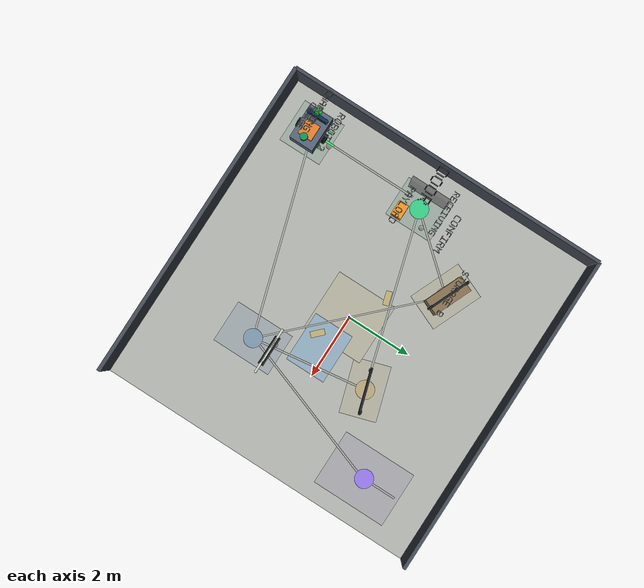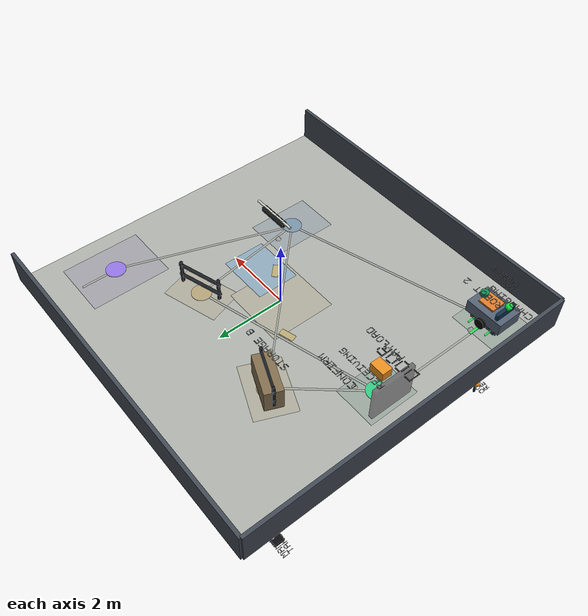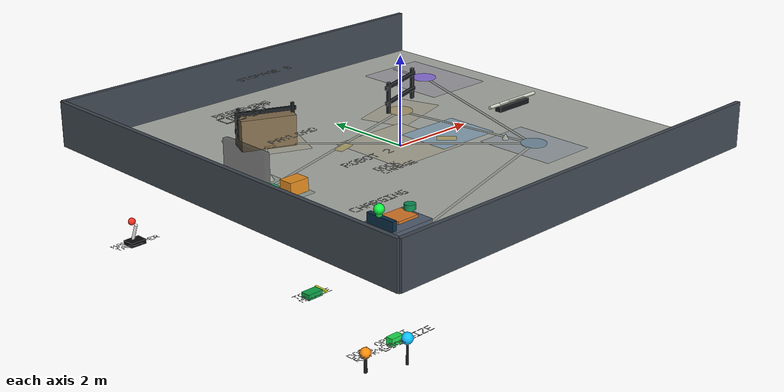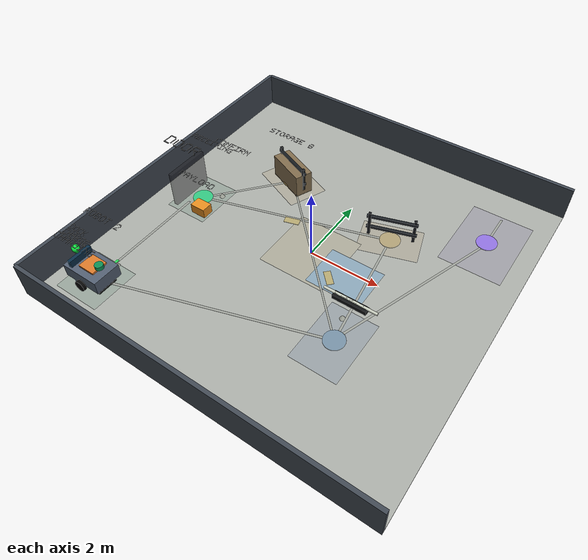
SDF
<sdf version="1.9">
 <world name="indoor_room">
  <model name="floor">
   <static>true</static>
   <link name="link">
    <collision name="collision"><geometry><box><size>10 10 0.05</size></box></geometry></collision>
    <visual name="visual">
     <geometry><box><size>10 10 0.05</size></box></geometry>
     <material>
      <ambient>0.66 0.67 0.65 1</ambient>
      <diffuse>0.66 0.67 0.65 1</diffuse>
      <specular>0.05 0.05 0.05 1</specular>
     </material>
    </visual>
   </link>
  </model>
  <model name="north_wall">
   <static>true</static>
   <pose>0 5 0.5 0 0 0</pose>
   <link name="link">
    <collision name="c"><geometry><box><size>10 0.1 1</size></box></geometry></collision>
    <visual name="v">
     <geometry><box><size>10 0.1 1</size></box></geometry>
     <material><diffuse>0.25 0.28 0.32 1</diffuse></material>
    </visual>
   </link>
  </model>
  <model name="south_wall">
   <static>true</static>
   <pose>0 -5 0.5 0 0 0</pose>
   <link name="link">
    <collision name="c"><geometry><box><size>10 0.1 1</size></box></geometry></collision>
    <visual name="v">
     <geometry><box><size>10 0.1 1</size></box></geometry>
     <material><diffuse>0.25 0.28 0.32 1</diffuse></material>
    </visual>
   </link>
  </model>
  <model name="west_wall">
   <static>true</static>
   <pose>-5 0 0.5 0 0 0</pose>
   <link name="link">
    <collision name="c"><geometry><box><size>0.1 10 1</size></box></geometry></collision>
    <visual name="v">
     <geometry><box><size>0.1 10 1</size></box></geometry>
     <material><diffuse>0.25 0.28 0.32 1</diffuse></material>
    </visual>
   </link>
  </model>
  <model name="storage_rack_2">
   <static>true</static>
   <pose>-2 2 0.35 0 0 -0.4</pose>
   <link name="link">
    <collision name="c"><geometry><box><size>1.2 0.5 0.7</size></box></geometry></collision>
    <visual name="v">
     <geometry><box><size>1.2 0.5 0.7</size></box></geometry>
     <material><diffuse>0.50 0.42 0.30 1</diffuse></material>
    </visual>
   </link>
  </model>
  <model name="showcase_rack_and_workcell_detail">
   <static>true</static>
   <link name="link">
    <visual name="rack_a_top_beam">
     <pose>1.50 1.50 0.78 0 0 0.30</pose>
     <geometry><box><size>1.34 0.06 0.08</size></box></geometry>
     <material><diffuse>0.10 0.12 0.14 1</diffuse></material>
    </visual>
    <visual name="rack_a_bottom_beam">
     <pose>1.50 1.50 0.42 0 0 0.30</pose>
     <geometry><box><size>1.34 0.06 0.08</size></box></geometry>
     <material><diffuse>0.10 0.12 0.14 1</diffuse></material>
    </visual>
    <visual name="rack_a_post_1">
     <pose>0.94 1.31 0.55 0 0 0.30</pose>
     <geometry><box><size>0.07 0.07 0.72</size></box></geometry>
     <material><diffuse>0.08 0.09 0.10 1</diffuse></material>
    </visual>
    <visual name="rack_a_post_2">
     <pose>2.06 1.69 0.55 0 0 0.30</pose>
     <geometry><box><size>0.07 0.07 0.72</size></box></geometry>
     <material><diffuse>0.08 0.09 0.10 1</diffuse></material>
    </visual>
    <visual name="rack_b_top_beam">
     <pose>-2.00 2.00 0.78 0 0 -0.40</pose>
     <geometry><box><size>1.34 0.06 0.08</size></box></geometry>
     <material><diffuse>0.10 0.12 0.14 1</diffuse></material>
    </visual>
    <visual name="rack_b_bottom_beam">
     <pose>-2.00 2.00 0.42 0 0 -0.40</pose>
     <geometry><box><size>1.34 0.06 0.08</size></box></geometry>
     <material><diffuse>0.10 0.12 0.14 1</diffuse></material>
    </visual>
    <visual name="rack_b_post_1">
     <pose>-2.54 2.24 0.55 0 0 -0.40</pose>
     <geometry><box><size>0.07 0.07 0.72</size></box></geometry>
     <material><diffuse>0.08 0.09 0.10 1</diffuse></material>
    </visual>
    <visual name="rack_b_post_2">
     <pose>-1.46 1.76 0.55 0 0 -0.40</pose>
     <geometry><box><size>0.07 0.07 0.72</size></box></geometry>
     <material><diffuse>0.08 0.09 0.10 1</diffuse></material>
    </visual>
    <visual name="packing_conveyor">
     <pose>2.00 -1.36 0.78 0 0 0</pose>
     <geometry><box><size>0.90 0.16 0.12</size></box></geometry>
     <material><diffuse>0.07 0.08 0.09 1</diffuse></material>
    </visual>
    <visual name="packing_roller_1">
     <pose>1.70 -1.36 0.87 0 1.5708 0</pose>
     <geometry><cylinder><radius>0.035</radius><length>0.82</length></cylinder></geometry>
     <material><diffuse>0.80 0.82 0.76 1</diffuse></material>
    </visual>
    <visual name="packing_roller_2">
     <pose>2.00 -1.36 0.87 0 1.5708 0</pose>
     <geometry><cylinder><radius>0.035</radius><length>0.82</length></cylinder></geometry>
     <material><diffuse>0.80 0.82 0.76 1</diffuse></material>
    </visual>
    <visual name="packing_roller_3">
     <pose>2.30 -1.36 0.87 0 1.5708 0</pose>
     <geometry><cylinder><radius>0.035</radius><length>0.82</length></cylinder></geometry>
     <material><diffuse>0.80 0.82 0.76 1</diffuse></material>
    </visual>
   </link>
  </model>
  <model name="showcase_zone_floor">
   <static>true</static>
   <pose>0 0 0.035 0 0 0</pose>
   <link name="link">
    <visual name="receiving_zone">
     <pose>-3.70 0.00 0 0 0 0</pose>
     <geometry><box><size>1.25 1.50 0.012</size></box></geometry>
     <material><diffuse>0.30 0.50 0.40 0.16</diffuse><ambient>0.30 0.50 0.40 0.16</ambient></material>
    </visual>
    <visual name="storage_a_zone">
     <pose>1.50 1.50 0 0 0 0.30</pose>
     <geometry><box><size>1.65 1.10 0.012</size></box></geometry>
     <material><diffuse>0.70 0.60 0.40 0.16</diffuse><ambient>0.70 0.60 0.40 0.16</ambient></material>
    </visual>
    <visual name="storage_b_zone">
     <pose>-2.00 2.00 0 0 0 -0.40</pose>
     <geometry><box><size>1.65 1.15 0.012</size></box></geometry>
     <material><diffuse>0.70 0.60 0.40 0.16</diffuse><ambient>0.70 0.60 0.40 0.16</ambient></material>
    </visual>
    <visual name="packing_zone">
     <pose>2.00 -2.00 0 0 0 0</pose>
     <geometry><box><size>1.30 1.85 0.012</size></box></geometry>
     <material><diffuse>0.34 0.46 0.62 0.16</diffuse><ambient>0.34 0.46 0.62 0.16</ambient></material>
    </visual>
    <visual name="dock_zone">
     <pose>-3.90 -3.80 0 0 0 0</pose>
     <geometry><box><size>1.35 1.35 0.012</size></box></geometry>
     <material><diffuse>0.32 0.52 0.42 0.16</diffuse><ambient>0.32 0.52 0.42 0.16</ambient></material>
    </visual>
    <visual name="elevator_zone">
     <pose>3.65 2.85 0 0 0 0</pose>
     <geometry><box><size>1.70 2.30 0.012</size></box></geometry>
     <material><diffuse>0.46 0.42 0.62 0.15</diffuse><ambient>0.46 0.42 0.62 0.15</ambient></material>
    </visual>
    <visual name="traffic_control_zone">
     <pose>0.00 0.00 0.006 0 0 0</pose>
     <geometry><box><size>1.90 1.90 0.012</size></box></geometry>
     <material><diffuse>0.72 0.64 0.40 0.14</diffuse><ambient>0.72 0.64 0.40 0.14</ambient></material>
    </visual>
    <visual name="slow_zone_overlay">
     <pose>1.20 -0.25 0.012 0 0 0</pose>
     <geometry><box><size>1.55 1.25 0.012</size></box></geometry>
     <material><diffuse>0.08 0.56 1.0 0.20</diffuse><ambient>0.08 0.56 1.0 0.20</ambient></material>
    </visual>
   </link>
  </model>
  <model name="showcase_lane_markers">
   <static>true</static>
   <pose>0 0 0.055 0 0 0</pose>
   <link name="link">
    <visual name="lane_dock_receiving">
     <pose>-3.90 -1.90 0 0 0 1.5708</pose>
     <geometry><box><size>3.10 0.055 0.018</size></box></geometry>
     <material><diffuse>0.60 0.62 0.58 0.40</diffuse><emissive>0.06 0.06 0.05 1</emissive></material>
    </visual>
    <visual name="lane_receiving_storage_a">
     <pose>-1.10 0.75 0 0 0 0.2808</pose>
     <geometry><box><size>5.40 0.055 0.018</size></box></geometry>
     <material><diffuse>0.60 0.62 0.58 0.40</diffuse><emissive>0.06 0.06 0.05 1</emissive></material>
    </visual>
    <visual name="lane_receiving_storage_b">
     <pose>-2.85 1.00 0 0 0 0.8663</pose>
     <geometry><box><size>2.65 0.055 0.018</size></box></geometry>
     <material><diffuse>0.60 0.62 0.58 0.40</diffuse><emissive>0.06 0.06 0.05 1</emissive></material>
    </visual>
    <visual name="lane_storage_a_packing">
     <pose>1.75 -0.25 0 0 0 -1.4289</pose>
     <geometry><box><size>3.55 0.055 0.018</size></box></geometry>
     <material><diffuse>0.60 0.62 0.58 0.40</diffuse><emissive>0.06 0.06 0.05 1</emissive></material>
    </visual>
    <visual name="lane_storage_b_packing">
     <pose>0.00 0.00 0.004 0 0 -0.7854</pose>
     <geometry><box><size>5.65 0.045 0.018</size></box></geometry>
     <material><diffuse>0.60 0.62 0.58 0.34</diffuse><emissive>0.05 0.05 0.04 1</emissive></material>
    </visual>
    <visual name="lane_packing_dock">
     <pose>-0.95 -2.90 0 0 0 -2.8450</pose>
     <geometry><box><size>6.20 0.055 0.018</size></box></geometry>
     <material><diffuse>0.60 0.62 0.58 0.40</diffuse><emissive>0.06 0.06 0.05 1</emissive></material>
    </visual>
    <visual name="lane_packing_lift">
     <pose>2.83 0.43 0 0 0 1.2315</pose>
     <geometry><box><size>4.95 0.055 0.018</size></box></geometry>
     <material><diffuse>0.60 0.62 0.58 0.40</diffuse><emissive>0.06 0.06 0.05 1</emissive></material>
    </visual>
    <visual name="lane_lift_floor2">
     <pose>3.65 3.35 0 0 0 1.5708</pose>
     <geometry><box><size>1.05 0.055 0.018</size></box></geometry>
     <material><diffuse>0.60 0.62 0.58 0.40</diffuse><emissive>0.06 0.06 0.05 1</emissive></material>
    </visual>
    <visual name="arrow_receiving">
     <pose>-3.28 0.34 0.020 0 0 0.78</pose>
     <geometry><cone><radius>0.11</radius><length>0.18</length></cone></geometry>
     <material><diffuse>0.64 0.66 0.60 0.55</diffuse><emissive>0.08 0.08 0.06 1</emissive></material>
    </visual>
    <visual name="arrow_packing">
     <pose>1.82 -1.36 0.020 0 0 -1.2</pose>
     <geometry><cone><radius>0.11</radius><length>0.18</length></cone></geometry>
     <material><diffuse>0.64 0.66 0.60 0.55</diffuse><emissive>0.08 0.08 0.06 1</emissive></material>
    </visual>
    <visual name="arrow_dock">
     <pose>-3.82 -3.18 0.020 0 0 -1.57</pose>
     <geometry><cone><radius>0.11</radius><length>0.18</length></cone></geometry>
     <material><diffuse>0.64 0.66 0.60 0.55</diffuse><emissive>0.08 0.08 0.06 1</emissive></material>
    </visual>
   </link>
  </model>
  <model name="showcase_station_pads">
   <static>true</static>
   <pose>0 0 0.070 0 0 0</pose>
   <link name="link">
    <visual name="pad_receiving">
     <pose>-3.70 0.00 0 0 0 0</pose>
     <geometry><cylinder><radius>0.28</radius><length>0.026</length></cylinder></geometry>
     <material><diffuse>0.04 0.86 0.48 0.70</diffuse><emissive>0.00 0.22 0.09 1</emissive></material>
    </visual>
    <visual name="pad_storage_a">
     <pose>1.50 1.50 0 0 0 0</pose>
     <geometry><cylinder><radius>0.28</radius><length>0.026</length></cylinder></geometry>
     <material><diffuse>0.74 0.62 0.34 0.55</diffuse><emissive>0.24 0.12 0.00 1</emissive></material>
    </visual>
    <visual name="pad_storage_b">
     <pose>-2.00 2.00 0 0 0 0</pose>
     <geometry><cylinder><radius>0.28</radius><length>0.026</length></cylinder></geometry>
     <material><diffuse>0.74 0.62 0.34 0.55</diffuse><emissive>0.24 0.12 0.00 1</emissive></material>
    </visual>
    <visual name="pad_packing">
     <pose>2.00 -2.00 0 0 0 0</pose>
     <geometry><cylinder><radius>0.28</radius><length>0.026</length></cylinder></geometry>
     <material><diffuse>0.34 0.52 0.68 0.55</diffuse><emissive>0.00 0.14 0.30 1</emissive></material>
    </visual>
    <visual name="pad_dock">
     <pose>-3.90 -3.80 0 0 0 0</pose>
     <geometry><cylinder><radius>0.28</radius><length>0.026</length></cylinder></geometry>
     <material><diffuse>0.06 0.90 0.34 0.72</diffuse><emissive>0.00 0.26 0.08 1</emissive></material>
    </visual>
    <visual name="pad_lift">
     <pose>3.65 2.85 0 0 0 0</pose>
     <geometry><cylinder><radius>0.28</radius><length>0.026</length></cylinder></geometry>
     <material><diffuse>0.56 0.40 1.00 0.72</diffuse><emissive>0.10 0.04 0.28 1</emissive></material>
    </visual>
    <visual name="wait_point_1">
     <pose>-1.05 0.62 0.012 0 0 0.28</pose>
     <geometry><box><size>0.42 0.18 0.026</size></box></geometry>
     <material><diffuse>0.78 0.68 0.34 0.60</diffuse><emissive>0.28 0.20 0.00 1</emissive></material>
    </visual>
    <visual name="wait_point_2">
     <pose>0.88 -0.52 0.012 0 0 -0.78</pose>
     <geometry><box><size>0.42 0.18 0.026</size></box></geometry>
     <material><diffuse>0.78 0.68 0.34 0.60</diffuse><emissive>0.28 0.20 0.00 1</emissive></material>
    </visual>
   </link>
  </model>
  <model name="showcase_dock_guidance">
   <static>true</static>
   <pose>-3.90 -3.48 0.075 0 0 0</pose>
   <link name="link">
    <visual name="approach_lane">
     <pose>0 0 0 0 0 1.5708</pose>
     <geometry><box><size>0.86 0.06 0.024</size></box></geometry>
     <material><diffuse>0.12 0.95 0.34 0.86</diffuse><emissive>0.02 0.28 0.08 1</emissive></material>
    </visual>
    <visual name="left_alignment">
     <pose>-0.28 -0.10 0.006 0 0 1.5708</pose>
     <geometry><box><size>0.58 0.04 0.024</size></box></geometry>
     <material><diffuse>0.12 0.95 0.34 0.86</diffuse><emissive>0.02 0.28 0.08 1</emissive></material>
    </visual>
    <visual name="right_alignment">
     <pose>0.28 -0.10 0.006 0 0 1.5708</pose>
     <geometry><box><size>0.58 0.04 0.024</size></box></geometry>
     <material><diffuse>0.12 0.95 0.34 0.86</diffuse><emissive>0.02 0.28 0.08 1</emissive></material>
    </visual>
   </link>
  </model>
  <model name="receiving_door">
   <static>true</static>
   <pose>-4.15 0 0 0 0 0</pose>
   <link name="link">
    <visual name="frame_visual">
     <pose>0 0 0.55 0 0 0</pose>
     <geometry><box><size>0.12 1.25 1.1</size></box></geometry>
     <material><diffuse>0.12 0.12 0.14 0.45</diffuse></material>
    </visual>
   </link>
  </model>
  <model name="receiving_door_panel">
   <static>false</static>
   <pose>-4.15 0 0.55 0 0 0</pose>
   <link name="link">
    <gravity>false</gravity>
    <visual name="panel_visual">
     <geometry><box><size>0.10 1.00 1.00</size></box></geometry>
     <material><diffuse>0.88 0.16 0.12 0.85</diffuse></material>
    </visual>
   </link>
  </model>
  <model name="localization_status_beacon">
   <static>false</static>
   <pose>-3.35 -3.55 -2 0 0 0</pose>
   <link name="link">
    <gravity>false</gravity>
    <visual name="mast_visual">
     <pose>0 0 -0.28 0 0 0</pose>
     <geometry><cylinder><radius>0.025</radius><length>0.55</length></cylinder></geometry>
     <material><diffuse>0.08 0.08 0.09 1</diffuse></material>
    </visual>
    <visual name="beacon_visual">
     <geometry><sphere><radius>0.12</radius></sphere></geometry>
     <material><diffuse>0.05 0.75 1.0 0.95</diffuse><emissive>0.02 0.34 0.70 1</emissive></material>
    </visual>
   </link>
  </model>
  <model name="manual_takeover_indicator">
   <static>false</static>
   <pose>-4.35 3.65 -2 0 0 0</pose>
   <link name="link">
    <gravity>false</gravity>
    <visual name="joystick_base_visual">
     <geometry><box><size>0.38 0.28 0.10</size></box></geometry>
     <material><diffuse>0.05 0.05 0.06 1</diffuse></material>
    </visual>
    <visual name="joystick_stick_visual">
     <pose>0 0 0.22 0.38 0 0</pose>
     <geometry><cylinder><radius>0.035</radius><length>0.42</length></cylinder></geometry>
     <material><diffuse>0.95 0.95 0.95 1</diffuse></material>
    </visual>
    <visual name="joystick_top_visual">
     <pose>0 0.07 0.45 0 0 0</pose>
     <geometry><sphere><radius>0.08</radius></sphere></geometry>
     <material><diffuse>0.95 0.18 0.12 1</diffuse><emissive>0.35 0.02 0.01 1</emissive></material>
    </visual>
   </link>
  </model>
  <model name="top_module_status_indicator">
   <static>false</static>
   <pose>-3.35 -0.90 -2 0 0 0</pose>
   <link name="link">
    <gravity>false</gravity>
    <visual name="module_visual">
     <geometry><box><size>0.36 0.22 0.12</size></box></geometry>
     <material><diffuse>0.05 0.65 0.28 0.95</diffuse><emissive>0.01 0.28 0.08 1</emissive></material>
    </visual>
    <visual name="scan_bar_visual">
     <pose>0.24 0 0.02 0 0 0</pose>
     <geometry><box><size>0.05 0.34 0.04</size></box></geometry>
     <material><diffuse>0.95 0.95 0.20 1</diffuse><emissive>0.45 0.45 0.03 1</emissive></material>
    </visual>
   </link>
  </model>
  <model name="payload_box_waiting">
   <static>false</static>
   <pose>-3.35 -0.45 0.18 0 0 0</pose>
   <link name="link">
    <gravity>false</gravity>
    <visual name="visual">
     <geometry><box><size>0.45 0.32 0.28</size></box></geometry>
     <material><diffuse>0.9 0.55 0.12 1</diffuse></material>
    </visual>
   </link>
  </model>
  <model name="charging_dock">
   <static>true</static>
   <pose>-3.9 -3.8 0 0 0 0</pose>
   <link name="base">
    <collision name="base_collision">
     <pose>0 0 0.04 0 0 0</pose>
     <geometry><box><size>0.85 0.55 0.08</size></box></geometry>
    </collision>
    <visual name="base_visual">
     <pose>0 0 0.04 0 0 0</pose>
     <geometry><box><size>0.85 0.55 0.08</size></box></geometry>
     <material><diffuse>0.08 0.08 0.09 1</diffuse></material>
    </visual>
    <visual name="back_panel">
     <pose>-0.34 0 0.42 0 0 0</pose>
     <geometry><box><size>0.10 0.65 0.75</size></box></geometry>
     <material><diffuse>0.04 0.18 0.28 1</diffuse></material>
    </visual>
    <visual name="charge_contact_left">
     <pose>0.10 0.14 0.13 0 0 0</pose>
     <geometry><box><size>0.16 0.04 0.08</size></box></geometry>
     <material><diffuse>0.95 0.68 0.12 1</diffuse></material>
    </visual>
    <visual name="charge_contact_right">
     <pose>0.10 -0.14 0.13 0 0 0</pose>
     <geometry><box><size>0.16 0.04 0.08</size></box></geometry>
     <material><diffuse>0.95 0.68 0.12 1</diffuse></material>
    </visual>
    <visual name="status_light">
     <pose>-0.40 0 0.85 0 0 0</pose>
     <geometry><sphere><radius>0.06</radius></sphere></geometry>
     <material><diffuse>0.05 0.8 0.25 1</diffuse><emissive>0.02 0.5 0.08 1</emissive></material>
    </visual>
   </link>
  </model>
  <model name="charging_status_beacon">
   <static>false</static>
   <pose>-4.30 -3.80 0.95 0 0 0</pose>
   <link name="link">
    <gravity>false</gravity>
    <visual name="beacon_visual">
     <geometry><sphere><radius>0.10</radius></sphere></geometry>
     <material><diffuse>0.05 0.95 0.25 0.95</diffuse><emissive>0.02 0.75 0.12 1</emissive></material>
    </visual>
   </link>
  </model>
  <model name="docking_retry_warning_beacon">
   <static>false</static>
   <pose>-4.30 -3.42 -2 0 0 0</pose>
   <link name="link">
    <gravity>false</gravity>
    <visual name="beacon_visual">
     <geometry><sphere><radius>0.11</radius></sphere></geometry>
     <material><diffuse>1.0 0.55 0.04 0.95</diffuse><emissive>0.70 0.24 0.02 1</emissive></material>
    </visual>
    <visual name="base_visual">
     <pose>0 0 -0.20 0 0 0</pose>
     <geometry><cylinder><radius>0.035</radius><length>0.40</length></cylinder></geometry>
     <material><diffuse>0.08 0.08 0.09 1</diffuse></material>
    </visual>
   </link>
  </model>
  <model name="opportunity_charge_beacon">
   <static>false</static>
   <pose>-3.55 -3.42 -2 0 0 0</pose>
   <link name="link">
    <gravity>false</gravity>
    <visual name="battery_visual">
     <geometry><box><size>0.28 0.16 0.16</size></box></geometry>
     <material><diffuse>0.12 0.88 0.32 0.95</diffuse><emissive>0.02 0.42 0.10 1</emissive></material>
    </visual>
    <visual name="battery_tip_visual">
     <pose>0.17 0 0 0 0 0</pose>
     <geometry><box><size>0.05 0.08 0.09</size></box></geometry>
     <material><diffuse>0.12 0.88 0.32 0.95</diffuse><emissive>0.02 0.42 0.10 1</emissive></material>
    </visual>
   </link>
  </model>
  <model name="label_robot_2">
   <static>false</static>
   <pose>-3.90 -3.10 1.60 0 0 0.00</pose>
   <link name="link">
    <gravity>false</gravity>
    <visual name="text_mesh_visual">
     <cast_shadows>false</cast_shadows>
     <geometry><mesh><uri>../media/text_meshes/label_robot_2.obj</uri></mesh></geometry>
     <material>
      <ambient>0.000 0.000 0.000 1</ambient>
      <diffuse>0.000 0.000 0.000 1</diffuse>
      <emissive>0 0 0 1</emissive>
      <double_sided>true</double_sided>
     </material>
    </visual>
   </link>
  </model>
  <model name="label_dock">
   <static>false</static>
   <pose>-3.90 -3.80 1.65 0 0 0.00</pose>
   <link name="link">
    <gravity>false</gravity>
    <visual name="text_mesh_visual">
     <cast_shadows>false</cast_shadows>
     <geometry><mesh><uri>../media/text_meshes/label_dock.obj</uri></mesh></geometry>
     <material>
      <ambient>0.000 0.000 0.000 1</ambient>
      <diffuse>0.000 0.000 0.000 1</diffuse>
      <emissive>0 0 0 1</emissive>
      <double_sided>true</double_sided>
     </material>
    </visual>
   </link>
  </model>
  <model name="label_receiving">
   <static>false</static>
   <pose>-3.70 0.65 1.55 0 0 0.00</pose>
   <link name="link">
    <gravity>false</gravity>
    <visual name="text_mesh_visual">
     <cast_shadows>false</cast_shadows>
     <geometry><mesh><uri>../media/text_meshes/label_receiving.obj</uri></mesh></geometry>
     <material>
      <ambient>0.000 0.000 0.000 1</ambient>
      <diffuse>0.000 0.000 0.000 1</diffuse>
      <emissive>0 0 0 1</emissive>
      <double_sided>true</double_sided>
     </material>
    </visual>
   </link>
  </model>
  <model name="label_door">
   <static>false</static>
   <pose>-4.15 0.00 1.70 0 0 0.00</pose>
   <link name="link">
    <gravity>false</gravity>
    <visual name="text_mesh_visual">
     <cast_shadows>false</cast_shadows>
     <geometry><mesh><uri>../media/text_meshes/label_door.obj</uri></mesh></geometry>
     <material>
      <ambient>0.000 0.000 0.000 1</ambient>
      <diffuse>0.000 0.000 0.000 1</diffuse>
      <emissive>0 0 0 1</emissive>
      <double_sided>true</double_sided>
     </material>
    </visual>
   </link>
  </model>
  <model name="label_storage_b">
   <static>false</static>
   <pose>-2.00 2.00 1.60 0 0 0.00</pose>
   <link name="link">
    <gravity>false</gravity>
    <visual name="text_mesh_visual">
     <cast_shadows>false</cast_shadows>
     <geometry><mesh><uri>../media/text_meshes/label_storage_b.obj</uri></mesh></geometry>
     <material>
      <ambient>0.000 0.000 0.000 1</ambient>
      <diffuse>0.000 0.000 0.000 1</diffuse>
      <emissive>0 0 0 1</emissive>
      <double_sided>true</double_sided>
     </material>
    </visual>
   </link>
  </model>
  <model name="label_confirm">
   <static>false</static>
   <pose>-3.32 1.03 1.35 0 0 0.00</pose>
   <link name="link">
    <gravity>false</gravity>
    <visual name="text_mesh_visual">
     <cast_shadows>false</cast_shadows>
     <geometry><mesh><uri>../media/text_meshes/label_confirm.obj</uri></mesh></geometry>
     <material>
      <ambient>0.000 0.000 0.000 1</ambient>
      <diffuse>0.000 0.000 0.000 1</diffuse>
      <emissive>0 0 0 1</emissive>
      <double_sided>true</double_sided>
     </material>
    </visual>
   </link>
  </model>
  <model name="label_payload">
   <static>false</static>
   <pose>-3.35 -0.45 1.20 0 0 0.00</pose>
   <link name="link">
    <gravity>false</gravity>
    <visual name="text_mesh_visual">
     <cast_shadows>false</cast_shadows>
     <geometry><mesh><uri>../media/text_meshes/label_payload.obj</uri></mesh></geometry>
     <material>
      <ambient>0.000 0.000 0.000 1</ambient>
      <diffuse>0.000 0.000 0.000 1</diffuse>
      <emissive>0 0 0 1</emissive>
      <double_sided>true</double_sided>
     </material>
    </visual>
   </link>
  </model>
  <model name="label_charging_status">
   <static>false</static>
   <pose>-4.30 -3.80 1.10 0 0 0.00</pose>
   <link name="link">
    <gravity>false</gravity>
    <visual name="text_mesh_visual">
     <cast_shadows>false</cast_shadows>
     <geometry><mesh><uri>../media/text_meshes/label_charging_status.obj</uri></mesh></geometry>
     <material>
      <ambient>0.000 0.000 0.000 1</ambient>
      <diffuse>0.000 0.000 0.000 1</diffuse>
      <emissive>0 0 0 1</emissive>
      <double_sided>true</double_sided>
     </material>
    </visual>
   </link>
  </model>
  <model name="label_docking_retry_status">
   <static>false</static>
   <pose>-4.30 -3.42 -2 0 0 0.00</pose>
   <link name="link">
    <gravity>false</gravity>
    <visual name="text_mesh_visual">
     <cast_shadows>false</cast_shadows>
     <geometry><mesh><uri>../media/text_meshes/label_docking_retry_status.obj</uri></mesh></geometry>
     <material>
      <ambient>0.000 0.000 0.000 1</ambient>
      <diffuse>0.000 0.000 0.000 1</diffuse>
      <emissive>0 0 0 1</emissive>
      <double_sided>true</double_sided>
     </material>
    </visual>
   </link>
  </model>
  <model name="label_opportunity_charge_status">
   <static>false</static>
   <pose>-3.55 -3.42 -2 0 0 0.00</pose>
   <link name="link">
    <gravity>false</gravity>
    <visual name="text_mesh_visual">
     <cast_shadows>false</cast_shadows>
     <geometry><mesh><uri>../media/text_meshes/label_opportunity_charge_status.obj</uri></mesh></geometry>
     <material>
      <ambient>0.000 0.000 0.000 1</ambient>
      <diffuse>0.000 0.000 0.000 1</diffuse>
      <emissive>0 0 0 1</emissive>
      <double_sided>true</double_sided>
     </material>
    </visual>
   </link>
  </model>
  <model name="label_top_module_status">
   <static>false</static>
   <pose>-3.35 -0.90 -2 0 0 0.00</pose>
   <link name="link">
    <gravity>false</gravity>
    <visual name="text_mesh_visual">
     <cast_shadows>false</cast_shadows>
     <geometry><mesh><uri>../media/text_meshes/label_top_module_status.obj</uri></mesh></geometry>
     <material>
      <ambient>0.000 0.000 0.000 1</ambient>
      <diffuse>0.000 0.000 0.000 1</diffuse>
      <emissive>0 0 0 1</emissive>
      <double_sided>true</double_sided>
     </material>
    </visual>
   </link>
  </model>
  <model name="label_localization_status">
   <static>false</static>
   <pose>-3.35 -3.55 -2 0 0 0.00</pose>
   <link name="link">
    <gravity>false</gravity>
    <visual name="text_mesh_visual">
     <cast_shadows>false</cast_shadows>
     <geometry><mesh><uri>../media/text_meshes/label_localization_status.obj</uri></mesh></geometry>
     <material>
      <ambient>0.000 0.000 0.000 1</ambient>
      <diffuse>0.000 0.000 0.000 1</diffuse>
      <emissive>0 0 0 1</emissive>
      <double_sided>true</double_sided>
     </material>
    </visual>
   </link>
  </model>
  <model name="label_manual_takeover_status">
   <static>false</static>
   <pose>-4.35 3.65 -2 0 0 0.00</pose>
   <link name="link">
    <gravity>false</gravity>
    <visual name="text_mesh_visual">
     <cast_shadows>false</cast_shadows>
     <geometry><mesh><uri>../media/text_meshes/label_manual_takeover_status.obj</uri></mesh></geometry>
     <material>
      <ambient>0.000 0.000 0.000 1</ambient>
      <diffuse>0.000 0.000 0.000 1</diffuse>
      <emissive>0 0 0 1</emissive>
      <double_sided>true</double_sided>
     </material>
    </visual>
   </link>
  </model>
  <model name="mobile_robot_2">
   <static>false</static>
   <pose>-3.9 -3.8 0.24 0 0 0</pose>
   <link name="base_link">
    <inertial><mass>24.0</mass><inertia><ixx>0.18</ixx><iyy>0.28</iyy><izz>0.36</izz></inertia></inertial>
    <collision name="base_collision">
     <pose>0 0 0.18 0 0 0</pose>
     <geometry><box><size>1.10 0.76 0.36</size></box></geometry>
    </collision>
    <visual name="base_visual">
     <pose>0 0 0.18 0 0 0</pose>
     <geometry><box><size>1.10 0.76 0.36</size></box></geometry>
     <material><diffuse>0.32 0.37 0.44 1</diffuse></material>
    </visual>
    <visual name="fleet_label_visual">
     <pose>0.10 0 0.43 0 0 0</pose>
     <geometry><box><size>0.48 0.44 0.05</size></box></geometry>
     <material><diffuse>0.85 0.47 0.16 1</diffuse></material>
    </visual>
    <visual name="lidar_visual">
     <pose>0.36 0 0.54 0 0 0</pose>
     <geometry><cylinder><radius>0.11</radius><length>0.11</length></cylinder></geometry>
     <material><diffuse>0.05 0.55 0.32 1</diffuse></material>
    </visual>
    <sensor name="lidar" type="gpu_lidar">
     <pose>0.36 0 0.54 0 0 0</pose>
     <topic>/robot_2/sim/scan</topic>
     <update_rate>10</update_rate>
     <always_on>true</always_on>
     <lidar>
      <scan>
       <horizontal>
        <samples>360</samples>
        <resolution>1</resolution>
        <min_angle>-3.14159265359</min_angle>
        <max_angle>3.14159265359</max_angle>
       </horizontal>
      </scan>
      <range><min>0.08</min><max>12.0</max><resolution>0.01</resolution></range>
     </lidar>
    </sensor>
   </link>
   <link name="left_wheel">
    <pose>0 0.43 0 1.57079632679 0 0</pose>
    <inertial><mass>0.7</mass><inertia><ixx>0.002</ixx><iyy>0.002</iyy><izz>0.002</izz></inertia></inertial>
    <collision name="collision">
     <geometry><cylinder><radius>0.15</radius><length>0.09</length></cylinder></geometry>
    </collision>
    <visual name="visual">
     <geometry><cylinder><radius>0.15</radius><length>0.09</length></cylinder></geometry>
     <material><diffuse>0.02 0.02 0.02 1</diffuse></material>
    </visual>
   </link>
   <link name="right_wheel">
    <pose>0 -0.43 0 1.57079632679 0 0</pose>
    <inertial><mass>0.7</mass><inertia><ixx>0.002</ixx><iyy>0.002</iyy><izz>0.002</izz></inertia></inertial>
    <collision name="collision">
     <geometry><cylinder><radius>0.15</radius><length>0.09</length></cylinder></geometry>
    </collision>
    <visual name="visual">
     <geometry><cylinder><radius>0.15</radius><length>0.09</length></cylinder></geometry>
     <material><diffuse>0.02 0.02 0.02 1</diffuse></material>
    </visual>
   </link>
   <link name="caster_wheel">
    <pose>-0.4 0 -0.08 0 0 0</pose>
    <collision name="collision"><geometry><sphere><radius>0.08</radius></sphere></geometry></collision>
    <visual name="visual">
     <geometry><sphere><radius>0.08</radius></sphere></geometry>
     <material><diffuse>0.02 0.02 0.02 1</diffuse></material>
    </visual>
   </link>
   <joint name="left_wheel_joint" type="revolute">
    <parent>base_link</parent>
    <child>left_wheel</child>
    <axis><xyz>0 1 0</xyz></axis>
   </joint>
   <joint name="right_wheel_joint" type="revolute">
    <parent>base_link</parent>
    <child>right_wheel</child>
    <axis><xyz>0 1 0</xyz></axis>
   </joint>
   <joint name="caster_joint" type="fixed"><parent>base_link</parent><child>caster_wheel</child></joint>
   <plugin filename="gz-sim-diff-drive-system" name="gz::sim::systems::DiffDrive">
    <left_joint>left_wheel_joint</left_joint>
    <right_joint>right_wheel_joint</right_joint>
    <wheel_separation>0.86</wheel_separation>
    <wheel_radius>0.15</wheel_radius>
    <topic>/robot_2/cmd_vel</topic>
    <odom_topic>/model/mobile_robot_2/odometry</odom_topic>
    <frame_id>robot_2/odom</frame_id>
    <child_frame_id>robot_2/base_link</child_frame_id>
   </plugin>
  </model>
 </world>
</sdf>
